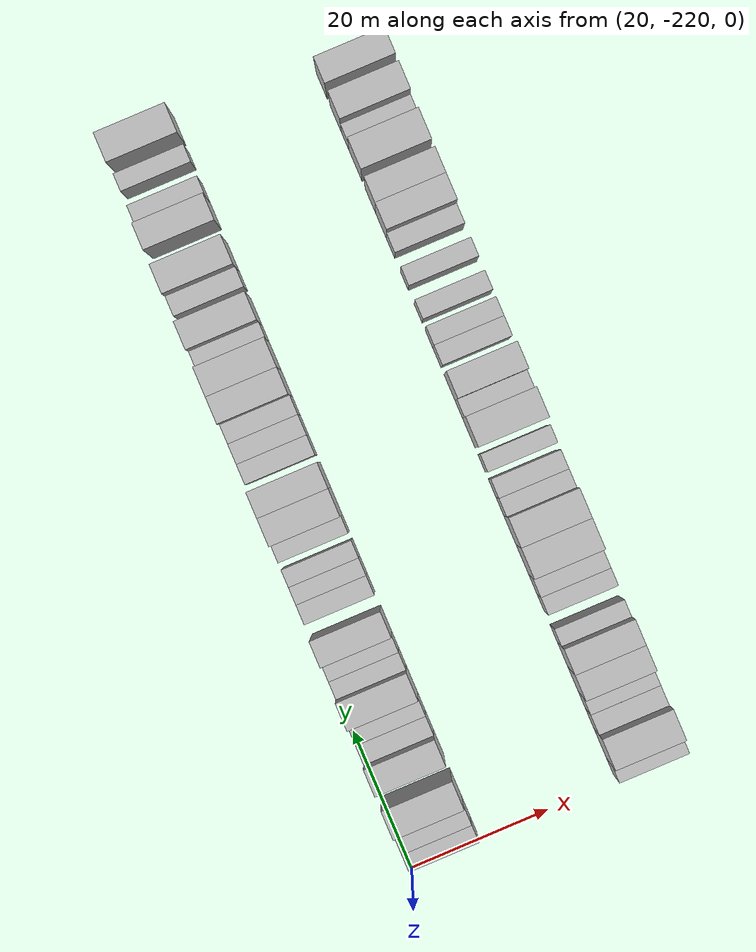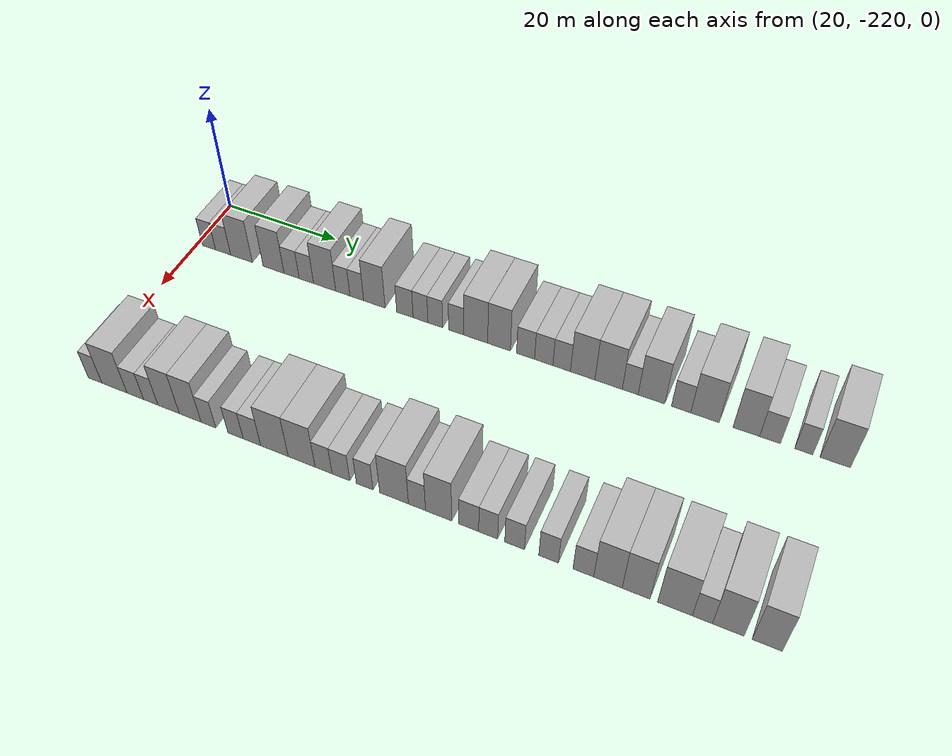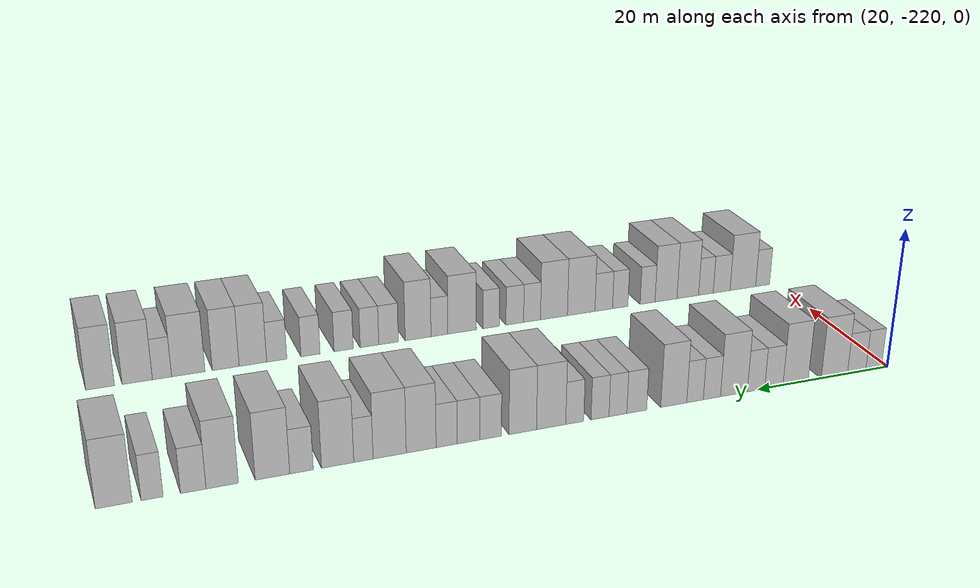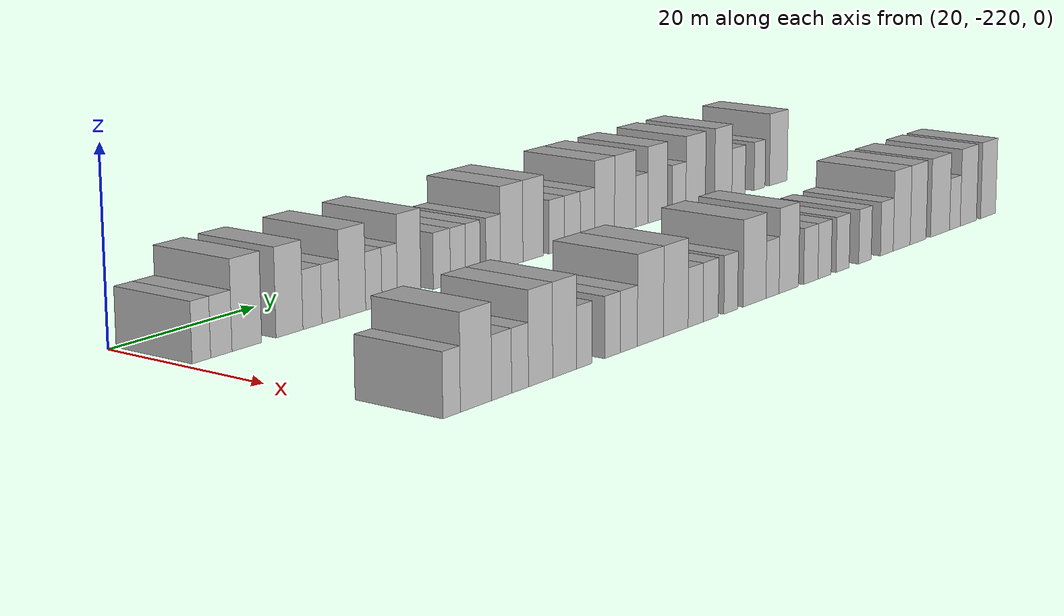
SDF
<sdf version="1.6">
 <world name="default">
  <model name="building_1">
   <static>1</static>
   <pose>25.0000 -217.7668 0 0.000000 0.000000 0.000000</pose>
   <link name="link">
    <pose>0 0 3.00 0 0 0</pose>
    <collision name="collision"><geometry><box><size>10.0000 2.4664 6.0000</size></box></geometry></collision>
    <visual name="visual">
     <cast_shadows>0</cast_shadows>
     <geometry><box><size>10.0000 2.4664 6.0000</size></box></geometry>
     <material>
      <script>
       <uri>model://HANNAS_wall/materials/scripts</uri>
       <uri>model://HANNAS_wall/materials/textures</uri>
       <name>vrc/HANNAS_wall</name>
      </script>
     </material>
    </visual>
   </link>
  </model>
  <model name="building_2">
   <static>1</static>
   <pose>25.0000 -215.0972 0 0.000000 0.000000 0.000000</pose>
   <link name="link">
    <pose>0 0 3.00 0 0 0</pose>
    <collision name="collision"><geometry><box><size>10.0000 2.8728 6.0000</size></box></geometry></collision>
    <visual name="visual">
     <cast_shadows>0</cast_shadows>
     <geometry><box><size>10.0000 2.8728 6.0000</size></box></geometry>
     <material>
      <script>
       <uri>model://HANNAS_wall/materials/scripts</uri>
       <uri>model://HANNAS_wall/materials/textures</uri>
       <name>vrc/HANNAS_wall</name>
      </script>
     </material>
    </visual>
   </link>
  </model>
  <model name="building_3">
   <static>1</static>
   <pose>25.0000 -211.6260 0 0.000000 0.000000 0.000000</pose>
   <link name="link">
    <pose>0 0 4.50 0 0 0</pose>
    <collision name="collision"><geometry><box><size>10.0000 4.0696 9.0000</size></box></geometry></collision>
    <visual name="visual">
     <cast_shadows>0</cast_shadows>
     <geometry><box><size>10.0000 4.0696 9.0000</size></box></geometry>
     <material>
      <script>
       <uri>model://HANNAS_wall/materials/scripts</uri>
       <uri>model://HANNAS_wall/materials/textures</uri>
       <name>vrc/HANNAS_wall</name>
      </script>
     </material>
    </visual>
   </link>
  </model>
  <model name="building_4">
   <static>1</static>
   <pose>25.0000 -205.6679 0 0.000000 0.000000 0.000000</pose>
   <link name="link">
    <pose>0 0 4.50 0 0 0</pose>
    <collision name="collision"><geometry><box><size>10.0000 3.8466 9.0000</size></box></geometry></collision>
    <visual name="visual">
     <cast_shadows>0</cast_shadows>
     <geometry><box><size>10.0000 3.8466 9.0000</size></box></geometry>
     <material>
      <script>
       <uri>model://HANNAS_wall/materials/scripts</uri>
       <uri>model://HANNAS_wall/materials/textures</uri>
       <name>vrc/HANNAS_wall</name>
      </script>
     </material>
    </visual>
   </link>
  </model>
  <model name="building_5">
   <static>1</static>
   <pose>25.0000 -202.3643 0 0.000000 0.000000 0.000000</pose>
   <link name="link">
    <pose>0 0 3.00 0 0 0</pose>
    <collision name="collision"><geometry><box><size>10.0000 2.7608 6.0000</size></box></geometry></collision>
    <visual name="visual">
     <cast_shadows>0</cast_shadows>
     <geometry><box><size>10.0000 2.7608 6.0000</size></box></geometry>
     <material>
      <script>
       <uri>model://HANNAS_wall/materials/scripts</uri>
       <uri>model://HANNAS_wall/materials/textures</uri>
       <name>vrc/HANNAS_wall</name>
      </script>
     </material>
    </visual>
   </link>
  </model>
  <model name="building_6">
   <static>1</static>
   <pose>25.0000 -199.6821 0 0.000000 0.000000 0.000000</pose>
   <link name="link">
    <pose>0 0 3.00 0 0 0</pose>
    <collision name="collision"><geometry><box><size>10.0000 2.6036 6.0000</size></box></geometry></collision>
    <visual name="visual">
     <cast_shadows>0</cast_shadows>
     <geometry><box><size>10.0000 2.6036 6.0000</size></box></geometry>
     <material>
      <script>
       <uri>model://HANNAS_wall/materials/scripts</uri>
       <uri>model://HANNAS_wall/materials/textures</uri>
       <name>vrc/HANNAS_wall</name>
      </script>
     </material>
    </visual>
   </link>
  </model>
  <model name="building_7">
   <static>1</static>
   <pose>25.0000 -196.3961 0 0.000000 0.000000 0.000000</pose>
   <link name="link">
    <pose>0 0 4.50 0 0 0</pose>
    <collision name="collision"><geometry><box><size>10.0000 3.9684 9.0000</size></box></geometry></collision>
    <visual name="visual">
     <cast_shadows>0</cast_shadows>
     <geometry><box><size>10.0000 3.9684 9.0000</size></box></geometry>
     <material>
      <script>
       <uri>model://HANNAS_wall/materials/scripts</uri>
       <uri>model://HANNAS_wall/materials/textures</uri>
       <name>vrc/HANNAS_wall</name>
      </script>
     </material>
    </visual>
   </link>
  </model>
  <model name="building_8">
   <static>1</static>
   <pose>25.0000 -193.1541 0 0.000000 0.000000 0.000000</pose>
   <link name="link">
    <pose>0 0 3.00 0 0 0</pose>
    <collision name="collision"><geometry><box><size>10.0000 2.5155 6.0000</size></box></geometry></collision>
    <visual name="visual">
     <cast_shadows>0</cast_shadows>
     <geometry><box><size>10.0000 2.5155 6.0000</size></box></geometry>
     <material>
      <script>
       <uri>model://HANNAS_wall/materials/scripts</uri>
       <uri>model://HANNAS_wall/materials/textures</uri>
       <name>vrc/HANNAS_wall</name>
      </script>
     </material>
    </visual>
   </link>
  </model>
  <model name="building_9">
   <static>1</static>
   <pose>25.0000 -190.6911 0 0.000000 0.000000 0.000000</pose>
   <link name="link">
    <pose>0 0 3.00 0 0 0</pose>
    <collision name="collision"><geometry><box><size>10.0000 2.4105 6.0000</size></box></geometry></collision>
    <visual name="visual">
     <cast_shadows>0</cast_shadows>
     <geometry><box><size>10.0000 2.4105 6.0000</size></box></geometry>
     <material>
      <script>
       <uri>model://HANNAS_wall/materials/scripts</uri>
       <uri>model://HANNAS_wall/materials/textures</uri>
       <name>vrc/HANNAS_wall</name>
      </script>
     </material>
    </visual>
   </link>
  </model>
  <model name="building_10">
   <static>1</static>
   <pose>25.0000 -187.6172 0 0.000000 0.000000 0.000000</pose>
   <link name="link">
    <pose>0 0 4.50 0 0 0</pose>
    <collision name="collision"><geometry><box><size>10.0000 3.7372 9.0000</size></box></geometry></collision>
    <visual name="visual">
     <cast_shadows>0</cast_shadows>
     <geometry><box><size>10.0000 3.7372 9.0000</size></box></geometry>
     <material>
      <script>
       <uri>model://HANNAS_wall/materials/scripts</uri>
       <uri>model://HANNAS_wall/materials/textures</uri>
       <name>vrc/HANNAS_wall</name>
      </script>
     </material>
    </visual>
   </link>
  </model>
  <model name="building_11">
   <static>1</static>
   <pose>25.0000 -182.3425 0 0.000000 0.000000 0.000000</pose>
   <link name="link">
    <pose>0 0 3.00 0 0 0</pose>
    <collision name="collision"><geometry><box><size>10.0000 2.8122 6.0000</size></box></geometry></collision>
    <visual name="visual">
     <cast_shadows>0</cast_shadows>
     <geometry><box><size>10.0000 2.8122 6.0000</size></box></geometry>
     <material>
      <script>
       <uri>model://HANNAS_wall/materials/scripts</uri>
       <uri>model://HANNAS_wall/materials/textures</uri>
       <name>vrc/HANNAS_wall</name>
      </script>
     </material>
    </visual>
   </link>
  </model>
  <model name="building_12">
   <static>1</static>
   <pose>25.0000 -179.6829 0 0.000000 0.000000 0.000000</pose>
   <link name="link">
    <pose>0 0 3.00 0 0 0</pose>
    <collision name="collision"><geometry><box><size>10.0000 2.5071 6.0000</size></box></geometry></collision>
    <visual name="visual">
     <cast_shadows>0</cast_shadows>
     <geometry><box><size>10.0000 2.5071 6.0000</size></box></geometry>
     <material>
      <script>
       <uri>model://HANNAS_wall/materials/scripts</uri>
       <uri>model://HANNAS_wall/materials/textures</uri>
       <name>vrc/HANNAS_wall</name>
      </script>
     </material>
    </visual>
   </link>
  </model>
  <model name="building_13">
   <static>1</static>
   <pose>25.0000 -177.1810 0 0.000000 0.000000 0.000000</pose>
   <link name="link">
    <pose>0 0 3.00 0 0 0</pose>
    <collision name="collision"><geometry><box><size>10.0000 2.4967 6.0000</size></box></geometry></collision>
    <visual name="visual">
     <cast_shadows>0</cast_shadows>
     <geometry><box><size>10.0000 2.4967 6.0000</size></box></geometry>
     <material>
      <script>
       <uri>model://HANNAS_wall/materials/scripts</uri>
       <uri>model://HANNAS_wall/materials/textures</uri>
       <name>vrc/HANNAS_wall</name>
      </script>
     </material>
    </visual>
   </link>
  </model>
  <model name="building_14">
   <static>1</static>
   <pose>25.0000 -173.6939 0 0.000000 0.000000 0.000000</pose>
   <link name="link">
    <pose>0 0 3.00 0 0 0</pose>
    <collision name="collision"><geometry><box><size>10.0000 2.4777 6.0000</size></box></geometry></collision>
    <visual name="visual">
     <cast_shadows>0</cast_shadows>
     <geometry><box><size>10.0000 2.4777 6.0000</size></box></geometry>
     <material>
      <script>
       <uri>model://HANNAS_wall/materials/scripts</uri>
       <uri>model://HANNAS_wall/materials/textures</uri>
       <name>vrc/HANNAS_wall</name>
      </script>
     </material>
    </visual>
   </link>
  </model>
  <model name="building_15">
   <static>1</static>
   <pose>25.0000 -170.4675 0 0.000000 0.000000 0.000000</pose>
   <link name="link">
    <pose>0 0 4.50 0 0 0</pose>
    <collision name="collision"><geometry><box><size>10.0000 3.9750 9.0000</size></box></geometry></collision>
    <visual name="visual">
     <cast_shadows>0</cast_shadows>
     <geometry><box><size>10.0000 3.9750 9.0000</size></box></geometry>
     <material>
      <script>
       <uri>model://HANNAS_wall/materials/scripts</uri>
       <uri>model://HANNAS_wall/materials/textures</uri>
       <name>vrc/HANNAS_wall</name>
      </script>
     </material>
    </visual>
   </link>
  </model>
  <model name="building_16">
   <static>1</static>
   <pose>25.0000 -166.6328 0 0.000000 0.000000 0.000000</pose>
   <link name="link">
    <pose>0 0 4.50 0 0 0</pose>
    <collision name="collision"><geometry><box><size>10.0000 3.6943 9.0000</size></box></geometry></collision>
    <visual name="visual">
     <cast_shadows>0</cast_shadows>
     <geometry><box><size>10.0000 3.6943 9.0000</size></box></geometry>
     <material>
      <script>
       <uri>model://HANNAS_wall/materials/scripts</uri>
       <uri>model://HANNAS_wall/materials/textures</uri>
       <name>vrc/HANNAS_wall</name>
      </script>
     </material>
    </visual>
   </link>
  </model>
  <model name="building_17">
   <static>1</static>
   <pose>25.0000 -162.3408 0 0.000000 0.000000 0.000000</pose>
   <link name="link">
    <pose>0 0 3.00 0 0 0</pose>
    <collision name="collision"><geometry><box><size>10.0000 2.8897 6.0000</size></box></geometry></collision>
    <visual name="visual">
     <cast_shadows>0</cast_shadows>
     <geometry><box><size>10.0000 2.8897 6.0000</size></box></geometry>
     <material>
      <script>
       <uri>model://HANNAS_wall/materials/scripts</uri>
       <uri>model://HANNAS_wall/materials/textures</uri>
       <name>vrc/HANNAS_wall</name>
      </script>
     </material>
    </visual>
   </link>
  </model>
  <model name="building_18">
   <static>1</static>
   <pose>25.0000 -159.4392 0 0.000000 0.000000 0.000000</pose>
   <link name="link">
    <pose>0 0 3.00 0 0 0</pose>
    <collision name="collision"><geometry><box><size>10.0000 2.9136 6.0000</size></box></geometry></collision>
    <visual name="visual">
     <cast_shadows>0</cast_shadows>
     <geometry><box><size>10.0000 2.9136 6.0000</size></box></geometry>
     <material>
      <script>
       <uri>model://HANNAS_wall/materials/scripts</uri>
       <uri>model://HANNAS_wall/materials/textures</uri>
       <name>vrc/HANNAS_wall</name>
      </script>
     </material>
    </visual>
   </link>
  </model>
  <model name="building_19">
   <static>1</static>
   <pose>25.0000 -156.6017 0 0.000000 0.000000 0.000000</pose>
   <link name="link">
    <pose>0 0 3.00 0 0 0</pose>
    <collision name="collision"><geometry><box><size>10.0000 2.7614 6.0000</size></box></geometry></collision>
    <visual name="visual">
     <cast_shadows>0</cast_shadows>
     <geometry><box><size>10.0000 2.7614 6.0000</size></box></geometry>
     <material>
      <script>
       <uri>model://HANNAS_wall/materials/scripts</uri>
       <uri>model://HANNAS_wall/materials/textures</uri>
       <name>vrc/HANNAS_wall</name>
      </script>
     </material>
    </visual>
   </link>
  </model>
  <model name="building_20">
   <static>1</static>
   <pose>25.0000 -153.3091 0 0.000000 0.000000 0.000000</pose>
   <link name="link">
    <pose>0 0 4.50 0 0 0</pose>
    <collision name="collision"><geometry><box><size>10.0000 3.8238 9.0000</size></box></geometry></collision>
    <visual name="visual">
     <cast_shadows>0</cast_shadows>
     <geometry><box><size>10.0000 3.8238 9.0000</size></box></geometry>
     <material>
      <script>
       <uri>model://HANNAS_wall/materials/scripts</uri>
       <uri>model://HANNAS_wall/materials/textures</uri>
       <name>vrc/HANNAS_wall</name>
      </script>
     </material>
    </visual>
   </link>
  </model>
  <model name="building_21">
   <static>1</static>
   <pose>25.0000 -149.2970 0 0.000000 0.000000 0.000000</pose>
   <link name="link">
    <pose>0 0 4.50 0 0 0</pose>
    <collision name="collision"><geometry><box><size>10.0000 4.2003 9.0000</size></box></geometry></collision>
    <visual name="visual">
     <cast_shadows>0</cast_shadows>
     <geometry><box><size>10.0000 4.2003 9.0000</size></box></geometry>
     <material>
      <script>
       <uri>model://HANNAS_wall/materials/scripts</uri>
       <uri>model://HANNAS_wall/materials/textures</uri>
       <name>vrc/HANNAS_wall</name>
      </script>
     </material>
    </visual>
   </link>
  </model>
  <model name="building_22">
   <static>1</static>
   <pose>25.0000 -145.9917 0 0.000000 0.000000 0.000000</pose>
   <link name="link">
    <pose>0 0 3.00 0 0 0</pose>
    <collision name="collision"><geometry><box><size>10.0000 2.4105 6.0000</size></box></geometry></collision>
    <visual name="visual">
     <cast_shadows>0</cast_shadows>
     <geometry><box><size>10.0000 2.4105 6.0000</size></box></geometry>
     <material>
      <script>
       <uri>model://HANNAS_wall/materials/scripts</uri>
       <uri>model://HANNAS_wall/materials/textures</uri>
       <name>vrc/HANNAS_wall</name>
      </script>
     </material>
    </visual>
   </link>
  </model>
  <model name="building_23">
   <static>1</static>
   <pose>25.0000 -142.7866 0 0.000000 0.000000 0.000000</pose>
   <link name="link">
    <pose>0 0 4.50 0 0 0</pose>
    <collision name="collision"><geometry><box><size>10.0000 3.9996 9.0000</size></box></geometry></collision>
    <visual name="visual">
     <cast_shadows>0</cast_shadows>
     <geometry><box><size>10.0000 3.9996 9.0000</size></box></geometry>
     <material>
      <script>
       <uri>model://HANNAS_wall/materials/scripts</uri>
       <uri>model://HANNAS_wall/materials/textures</uri>
       <name>vrc/HANNAS_wall</name>
      </script>
     </material>
    </visual>
   </link>
  </model>
  <model name="building_24">
   <static>1</static>
   <pose>25.0000 -138.3526 0 0.000000 0.000000 0.000000</pose>
   <link name="link">
    <pose>0 0 3.00 0 0 0</pose>
    <collision name="collision"><geometry><box><size>10.0000 2.8685 6.0000</size></box></geometry></collision>
    <visual name="visual">
     <cast_shadows>0</cast_shadows>
     <geometry><box><size>10.0000 2.8685 6.0000</size></box></geometry>
     <material>
      <script>
       <uri>model://HANNAS_wall/materials/scripts</uri>
       <uri>model://HANNAS_wall/materials/textures</uri>
       <name>vrc/HANNAS_wall</name>
      </script>
     </material>
    </visual>
   </link>
  </model>
  <model name="building_25">
   <static>1</static>
   <pose>25.0000 -134.8395 0 0.000000 0.000000 0.000000</pose>
   <link name="link">
    <pose>0 0 4.50 0 0 0</pose>
    <collision name="collision"><geometry><box><size>10.0000 4.1577 9.0000</size></box></geometry></collision>
    <visual name="visual">
     <cast_shadows>0</cast_shadows>
     <geometry><box><size>10.0000 4.1577 9.0000</size></box></geometry>
     <material>
      <script>
       <uri>model://HANNAS_wall/materials/scripts</uri>
       <uri>model://HANNAS_wall/materials/textures</uri>
       <name>vrc/HANNAS_wall</name>
      </script>
     </material>
    </visual>
   </link>
  </model>
  <model name="building_26">
   <static>1</static>
   <pose>25.0000 -128.8583 0 0.000000 0.000000 0.000000</pose>
   <link name="link">
    <pose>0 0 4.50 0 0 0</pose>
    <collision name="collision"><geometry><box><size>10.0000 3.8046 9.0000</size></box></geometry></collision>
    <visual name="visual">
     <cast_shadows>0</cast_shadows>
     <geometry><box><size>10.0000 3.8046 9.0000</size></box></geometry>
     <material>
      <script>
       <uri>model://HANNAS_wall/materials/scripts</uri>
       <uri>model://HANNAS_wall/materials/textures</uri>
       <name>vrc/HANNAS_wall</name>
      </script>
     </material>
    </visual>
   </link>
  </model>
  <model name="building_27">
   <static>1</static>
   <pose>25.0000 -125.4701 0 0.000000 0.000000 0.000000</pose>
   <link name="link">
    <pose>0 0 3.00 0 0 0</pose>
    <collision name="collision"><geometry><box><size>10.0000 2.9719 6.0000</size></box></geometry></collision>
    <visual name="visual">
     <cast_shadows>0</cast_shadows>
     <geometry><box><size>10.0000 2.9719 6.0000</size></box></geometry>
     <material>
      <script>
       <uri>model://HANNAS_wall/materials/scripts</uri>
       <uri>model://HANNAS_wall/materials/textures</uri>
       <name>vrc/HANNAS_wall</name>
      </script>
     </material>
    </visual>
   </link>
  </model>
  <model name="building_28">
   <static>1</static>
   <pose>25.0000 -120.7214 0 0.000000 0.000000 0.000000</pose>
   <link name="link">
    <pose>0 0 3.00 0 0 0</pose>
    <collision name="collision"><geometry><box><size>10.0000 2.5256 6.0000</size></box></geometry></collision>
    <visual name="visual">
     <cast_shadows>0</cast_shadows>
     <geometry><box><size>10.0000 2.5256 6.0000</size></box></geometry>
     <material>
      <script>
       <uri>model://HANNAS_wall/materials/scripts</uri>
       <uri>model://HANNAS_wall/materials/textures</uri>
       <name>vrc/HANNAS_wall</name>
      </script>
     </material>
    </visual>
   </link>
  </model>
  <model name="building_29">
   <static>1</static>
   <pose>25.0000 -116.3703 0 0.000000 0.000000 0.000000</pose>
   <link name="link">
    <pose>0 0 4.50 0 0 0</pose>
    <collision name="collision"><geometry><box><size>10.0000 4.1766 9.0000</size></box></geometry></collision>
    <visual name="visual">
     <cast_shadows>0</cast_shadows>
     <geometry><box><size>10.0000 4.1766 9.0000</size></box></geometry>
     <material>
      <script>
       <uri>model://HANNAS_wall/materials/scripts</uri>
       <uri>model://HANNAS_wall/materials/textures</uri>
       <name>vrc/HANNAS_wall</name>
      </script>
     </material>
    </visual>
   </link>
  </model>
  <model name="building_113">
   <static>1</static>
   <pose>55.0000 -217.7950 0 0.000000 0.000000 0.000000</pose>
   <link name="link">
    <pose>0 0 3.00 0 0 0</pose>
    <collision name="collision"><geometry><box><size>10.0000 2.4101 6.0000</size></box></geometry></collision>
    <visual name="visual">
     <cast_shadows>0</cast_shadows>
     <geometry><box><size>10.0000 2.4101 6.0000</size></box></geometry>
     <material>
      <script>
       <uri>model://HANNAS_wall/materials/scripts</uri>
       <uri>model://HANNAS_wall/materials/textures</uri>
       <name>vrc/HANNAS_wall</name>
      </script>
     </material>
    </visual>
   </link>
  </model>
  <model name="building_114">
   <static>1</static>
   <pose>55.0000 -214.3837 0 0.000000 0.000000 0.000000</pose>
   <link name="link">
    <pose>0 0 4.50 0 0 0</pose>
    <collision name="collision"><geometry><box><size>10.0000 4.4125 9.0000</size></box></geometry></collision>
    <visual name="visual">
     <cast_shadows>0</cast_shadows>
     <geometry><box><size>10.0000 4.4125 9.0000</size></box></geometry>
     <material>
      <script>
       <uri>model://HANNAS_wall/materials/scripts</uri>
       <uri>model://HANNAS_wall/materials/textures</uri>
       <name>vrc/HANNAS_wall</name>
      </script>
     </material>
    </visual>
   </link>
  </model>
  <model name="building_115">
   <static>1</static>
   <pose>55.0000 -210.7421 0 0.000000 0.000000 0.000000</pose>
   <link name="link">
    <pose>0 0 3.00 0 0 0</pose>
    <collision name="collision"><geometry><box><size>10.0000 2.8708 6.0000</size></box></geometry></collision>
    <visual name="visual">
     <cast_shadows>0</cast_shadows>
     <geometry><box><size>10.0000 2.8708 6.0000</size></box></geometry>
     <material>
      <script>
       <uri>model://HANNAS_wall/materials/scripts</uri>
       <uri>model://HANNAS_wall/materials/textures</uri>
       <name>vrc/HANNAS_wall</name>
      </script>
     </material>
    </visual>
   </link>
  </model>
  <model name="building_116">
   <static>1</static>
   <pose>55.0000 -208.0701 0 0.000000 0.000000 0.000000</pose>
   <link name="link">
    <pose>0 0 3.00 0 0 0</pose>
    <collision name="collision"><geometry><box><size>10.0000 2.4730 6.0000</size></box></geometry></collision>
    <visual name="visual">
     <cast_shadows>0</cast_shadows>
     <geometry><box><size>10.0000 2.4730 6.0000</size></box></geometry>
     <material>
      <script>
       <uri>model://HANNAS_wall/materials/scripts</uri>
       <uri>model://HANNAS_wall/materials/textures</uri>
       <name>vrc/HANNAS_wall</name>
      </script>
     </material>
    </visual>
   </link>
  </model>
  <model name="building_117">
   <static>1</static>
   <pose>55.0000 -205.0143 0 0.000000 0.000000 0.000000</pose>
   <link name="link">
    <pose>0 0 4.50 0 0 0</pose>
    <collision name="collision"><geometry><box><size>10.0000 3.6387 9.0000</size></box></geometry></collision>
    <visual name="visual">
     <cast_shadows>0</cast_shadows>
     <geometry><box><size>10.0000 3.6387 9.0000</size></box></geometry>
     <material>
      <script>
       <uri>model://HANNAS_wall/materials/scripts</uri>
       <uri>model://HANNAS_wall/materials/textures</uri>
       <name>vrc/HANNAS_wall</name>
      </script>
     </material>
    </visual>
   </link>
  </model>
  <model name="building_118">
   <static>1</static>
   <pose>55.0000 -201.3672 0 0.000000 0.000000 0.000000</pose>
   <link name="link">
    <pose>0 0 4.50 0 0 0</pose>
    <collision name="collision"><geometry><box><size>10.0000 3.6555 9.0000</size></box></geometry></collision>
    <visual name="visual">
     <cast_shadows>0</cast_shadows>
     <geometry><box><size>10.0000 3.6555 9.0000</size></box></geometry>
     <material>
      <script>
       <uri>model://HANNAS_wall/materials/scripts</uri>
       <uri>model://HANNAS_wall/materials/textures</uri>
       <name>vrc/HANNAS_wall</name>
      </script>
     </material>
    </visual>
   </link>
  </model>
  <model name="building_119">
   <static>1</static>
   <pose>55.0000 -198.3109 0 0.000000 0.000000 0.000000</pose>
   <link name="link">
    <pose>0 0 3.00 0 0 0</pose>
    <collision name="collision"><geometry><box><size>10.0000 2.4571 6.0000</size></box></geometry></collision>
    <visual name="visual">
     <cast_shadows>0</cast_shadows>
     <geometry><box><size>10.0000 2.4571 6.0000</size></box></geometry>
     <material>
      <script>
       <uri>model://HANNAS_wall/materials/scripts</uri>
       <uri>model://HANNAS_wall/materials/textures</uri>
       <name>vrc/HANNAS_wall</name>
      </script>
     </material>
    </visual>
   </link>
  </model>
  <model name="building_120">
   <static>1</static>
   <pose>55.0000 -193.8319 0 0.000000 0.000000 0.000000</pose>
   <link name="link">
    <pose>0 0 3.00 0 0 0</pose>
    <collision name="collision"><geometry><box><size>10.0000 2.5009 6.0000</size></box></geometry></collision>
    <visual name="visual">
     <cast_shadows>0</cast_shadows>
     <geometry><box><size>10.0000 2.5009 6.0000</size></box></geometry>
     <material>
      <script>
       <uri>model://HANNAS_wall/materials/scripts</uri>
       <uri>model://HANNAS_wall/materials/textures</uri>
       <name>vrc/HANNAS_wall</name>
      </script>
     </material>
    </visual>
   </link>
  </model>
  <model name="building_121">
   <static>1</static>
   <pose>55.0000 -191.1599 0 0.000000 0.000000 0.000000</pose>
   <link name="link">
    <pose>0 0 3.00 0 0 0</pose>
    <collision name="collision"><geometry><box><size>10.0000 2.8430 6.0000</size></box></geometry></collision>
    <visual name="visual">
     <cast_shadows>0</cast_shadows>
     <geometry><box><size>10.0000 2.8430 6.0000</size></box></geometry>
     <material>
      <script>
       <uri>model://HANNAS_wall/materials/scripts</uri>
       <uri>model://HANNAS_wall/materials/textures</uri>
       <name>vrc/HANNAS_wall</name>
      </script>
     </material>
    </visual>
   </link>
  </model>
  <model name="building_122">
   <static>1</static>
   <pose>55.0000 -187.5359 0 0.000000 0.000000 0.000000</pose>
   <link name="link">
    <pose>0 0 4.50 0 0 0</pose>
    <collision name="collision"><geometry><box><size>10.0000 4.4051 9.0000</size></box></geometry></collision>
    <visual name="visual">
     <cast_shadows>0</cast_shadows>
     <geometry><box><size>10.0000 4.4051 9.0000</size></box></geometry>
     <material>
      <script>
       <uri>model://HANNAS_wall/materials/scripts</uri>
       <uri>model://HANNAS_wall/materials/textures</uri>
       <name>vrc/HANNAS_wall</name>
      </script>
     </material>
    </visual>
   </link>
  </model>
  <model name="building_123">
   <static>1</static>
   <pose>55.0000 -183.2116 0 0.000000 0.000000 0.000000</pose>
   <link name="link">
    <pose>0 0 4.50 0 0 0</pose>
    <collision name="collision"><geometry><box><size>10.0000 4.2435 9.0000</size></box></geometry></collision>
    <visual name="visual">
     <cast_shadows>0</cast_shadows>
     <geometry><box><size>10.0000 4.2435 9.0000</size></box></geometry>
     <material>
      <script>
       <uri>model://HANNAS_wall/materials/scripts</uri>
       <uri>model://HANNAS_wall/materials/textures</uri>
       <name>vrc/HANNAS_wall</name>
      </script>
     </material>
    </visual>
   </link>
  </model>
  <model name="building_124">
   <static>1</static>
   <pose>55.0000 -179.7668 0 0.000000 0.000000 0.000000</pose>
   <link name="link">
    <pose>0 0 3.00 0 0 0</pose>
    <collision name="collision"><geometry><box><size>10.0000 2.6461 6.0000</size></box></geometry></collision>
    <visual name="visual">
     <cast_shadows>0</cast_shadows>
     <geometry><box><size>10.0000 2.6461 6.0000</size></box></geometry>
     <material>
      <script>
       <uri>model://HANNAS_wall/materials/scripts</uri>
       <uri>model://HANNAS_wall/materials/textures</uri>
       <name>vrc/HANNAS_wall</name>
      </script>
     </material>
    </visual>
   </link>
  </model>
  <model name="building_125">
   <static>1</static>
   <pose>55.0000 -177.0754 0 0.000000 0.000000 0.000000</pose>
   <link name="link">
    <pose>0 0 3.00 0 0 0</pose>
    <collision name="collision"><geometry><box><size>10.0000 2.7367 6.0000</size></box></geometry></collision>
    <visual name="visual">
     <cast_shadows>0</cast_shadows>
     <geometry><box><size>10.0000 2.7367 6.0000</size></box></geometry>
     <material>
      <script>
       <uri>model://HANNAS_wall/materials/scripts</uri>
       <uri>model://HANNAS_wall/materials/textures</uri>
       <name>vrc/HANNAS_wall</name>
      </script>
     </material>
    </visual>
   </link>
  </model>
  <model name="building_126">
   <static>1</static>
   <pose>55.0000 -173.4355 0 0.000000 0.000000 0.000000</pose>
   <link name="link">
    <pose>0 0 3.00 0 0 0</pose>
    <collision name="collision"><geometry><box><size>10.0000 2.5432 6.0000</size></box></geometry></collision>
    <visual name="visual">
     <cast_shadows>0</cast_shadows>
     <geometry><box><size>10.0000 2.5432 6.0000</size></box></geometry>
     <material>
      <script>
       <uri>model://HANNAS_wall/materials/scripts</uri>
       <uri>model://HANNAS_wall/materials/textures</uri>
       <name>vrc/HANNAS_wall</name>
      </script>
     </material>
    </visual>
   </link>
  </model>
  <model name="building_127">
   <static>1</static>
   <pose>55.0000 -169.0062 0 0.000000 0.000000 0.000000</pose>
   <link name="link">
    <pose>0 0 4.50 0 0 0</pose>
    <collision name="collision"><geometry><box><size>10.0000 4.3155 9.0000</size></box></geometry></collision>
    <visual name="visual">
     <cast_shadows>0</cast_shadows>
     <geometry><box><size>10.0000 4.3155 9.0000</size></box></geometry>
     <material>
      <script>
       <uri>model://HANNAS_wall/materials/scripts</uri>
       <uri>model://HANNAS_wall/materials/textures</uri>
       <name>vrc/HANNAS_wall</name>
      </script>
     </material>
    </visual>
   </link>
  </model>
  <model name="building_128">
   <static>1</static>
   <pose>55.0000 -165.5836 0 0.000000 0.000000 0.000000</pose>
   <link name="link">
    <pose>0 0 3.00 0 0 0</pose>
    <collision name="collision"><geometry><box><size>10.0000 2.5298 6.0000</size></box></geometry></collision>
    <visual name="visual">
     <cast_shadows>0</cast_shadows>
     <geometry><box><size>10.0000 2.5298 6.0000</size></box></geometry>
     <material>
      <script>
       <uri>model://HANNAS_wall/materials/scripts</uri>
       <uri>model://HANNAS_wall/materials/textures</uri>
       <name>vrc/HANNAS_wall</name>
      </script>
     </material>
    </visual>
   </link>
  </model>
  <model name="building_129">
   <static>1</static>
   <pose>55.0000 -162.3957 0 0.000000 0.000000 0.000000</pose>
   <link name="link">
    <pose>0 0 4.50 0 0 0</pose>
    <collision name="collision"><geometry><box><size>10.0000 3.8460 9.0000</size></box></geometry></collision>
    <visual name="visual">
     <cast_shadows>0</cast_shadows>
     <geometry><box><size>10.0000 3.8460 9.0000</size></box></geometry>
     <material>
      <script>
       <uri>model://HANNAS_wall/materials/scripts</uri>
       <uri>model://HANNAS_wall/materials/textures</uri>
       <name>vrc/HANNAS_wall</name>
      </script>
     </material>
    </visual>
   </link>
  </model>
  <model name="building_130">
   <static>1</static>
   <pose>55.0000 -158.0358 0 0.000000 0.000000 0.000000</pose>
   <link name="link">
    <pose>0 0 3.00 0 0 0</pose>
    <collision name="collision"><geometry><box><size>10.0000 2.8737 6.0000</size></box></geometry></collision>
    <visual name="visual">
     <cast_shadows>0</cast_shadows>
     <geometry><box><size>10.0000 2.8737 6.0000</size></box></geometry>
     <material>
      <script>
       <uri>model://HANNAS_wall/materials/scripts</uri>
       <uri>model://HANNAS_wall/materials/textures</uri>
       <name>vrc/HANNAS_wall</name>
      </script>
     </material>
    </visual>
   </link>
  </model>
  <model name="building_131">
   <static>1</static>
   <pose>55.0000 -155.2460 0 0.000000 0.000000 0.000000</pose>
   <link name="link">
    <pose>0 0 3.00 0 0 0</pose>
    <collision name="collision"><geometry><box><size>10.0000 2.7060 6.0000</size></box></geometry></collision>
    <visual name="visual">
     <cast_shadows>0</cast_shadows>
     <geometry><box><size>10.0000 2.7060 6.0000</size></box></geometry>
     <material>
      <script>
       <uri>model://HANNAS_wall/materials/scripts</uri>
       <uri>model://HANNAS_wall/materials/textures</uri>
       <name>vrc/HANNAS_wall</name>
      </script>
     </material>
    </visual>
   </link>
  </model>
  <model name="building_132">
   <static>1</static>
   <pose>55.0000 -151.5112 0 0.000000 0.000000 0.000000</pose>
   <link name="link">
    <pose>0 0 3.00 0 0 0</pose>
    <collision name="collision"><geometry><box><size>10.0000 2.7635 6.0000</size></box></geometry></collision>
    <visual name="visual">
     <cast_shadows>0</cast_shadows>
     <geometry><box><size>10.0000 2.7635 6.0000</size></box></geometry>
     <material>
      <script>
       <uri>model://HANNAS_wall/materials/scripts</uri>
       <uri>model://HANNAS_wall/materials/textures</uri>
       <name>vrc/HANNAS_wall</name>
      </script>
     </material>
    </visual>
   </link>
  </model>
  <model name="building_133">
   <static>1</static>
   <pose>55.0000 -146.7765 0 0.000000 0.000000 0.000000</pose>
   <link name="link">
    <pose>0 0 3.00 0 0 0</pose>
    <collision name="collision"><geometry><box><size>10.0000 2.7059 6.0000</size></box></geometry></collision>
    <visual name="visual">
     <cast_shadows>0</cast_shadows>
     <geometry><box><size>10.0000 2.7059 6.0000</size></box></geometry>
     <material>
      <script>
       <uri>model://HANNAS_wall/materials/scripts</uri>
       <uri>model://HANNAS_wall/materials/textures</uri>
       <name>vrc/HANNAS_wall</name>
      </script>
     </material>
    </visual>
   </link>
  </model>
  <model name="building_134">
   <static>1</static>
   <pose>55.0000 -142.0186 0 0.000000 0.000000 0.000000</pose>
   <link name="link">
    <pose>0 0 3.00 0 0 0</pose>
    <collision name="collision"><geometry><box><size>10.0000 2.8098 6.0000</size></box></geometry></collision>
    <visual name="visual">
     <cast_shadows>0</cast_shadows>
     <geometry><box><size>10.0000 2.8098 6.0000</size></box></geometry>
     <material>
      <script>
       <uri>model://HANNAS_wall/materials/scripts</uri>
       <uri>model://HANNAS_wall/materials/textures</uri>
       <name>vrc/HANNAS_wall</name>
      </script>
     </material>
    </visual>
   </link>
  </model>
  <model name="building_135">
   <static>1</static>
   <pose>55.0000 -138.7105 0 0.000000 0.000000 0.000000</pose>
   <link name="link">
    <pose>0 0 4.50 0 0 0</pose>
    <collision name="collision"><geometry><box><size>10.0000 3.8065 9.0000</size></box></geometry></collision>
    <visual name="visual">
     <cast_shadows>0</cast_shadows>
     <geometry><box><size>10.0000 3.8065 9.0000</size></box></geometry>
     <material>
      <script>
       <uri>model://HANNAS_wall/materials/scripts</uri>
       <uri>model://HANNAS_wall/materials/textures</uri>
       <name>vrc/HANNAS_wall</name>
      </script>
     </material>
    </visual>
   </link>
  </model>
  <model name="building_136">
   <static>1</static>
   <pose>55.0000 -134.9739 0 0.000000 0.000000 0.000000</pose>
   <link name="link">
    <pose>0 0 4.50 0 0 0</pose>
    <collision name="collision"><geometry><box><size>10.0000 3.6666 9.0000</size></box></geometry></collision>
    <visual name="visual">
     <cast_shadows>0</cast_shadows>
     <geometry><box><size>10.0000 3.6666 9.0000</size></box></geometry>
     <material>
      <script>
       <uri>model://HANNAS_wall/materials/scripts</uri>
       <uri>model://HANNAS_wall/materials/textures</uri>
       <name>vrc/HANNAS_wall</name>
      </script>
     </material>
    </visual>
   </link>
  </model>
  <model name="building_137">
   <static>1</static>
   <pose>55.0000 -129.8917 0 0.000000 0.000000 0.000000</pose>
   <link name="link">
    <pose>0 0 4.50 0 0 0</pose>
    <collision name="collision"><geometry><box><size>10.0000 4.4978 9.0000</size></box></geometry></collision>
    <visual name="visual">
     <cast_shadows>0</cast_shadows>
     <geometry><box><size>10.0000 4.4978 9.0000</size></box></geometry>
     <material>
      <script>
       <uri>model://HANNAS_wall/materials/scripts</uri>
       <uri>model://HANNAS_wall/materials/textures</uri>
       <name>vrc/HANNAS_wall</name>
      </script>
     </material>
    </visual>
   </link>
  </model>
  <model name="building_138">
   <static>1</static>
   <pose>55.0000 -126.3639 0 0.000000 0.000000 0.000000</pose>
   <link name="link">
    <pose>0 0 3.00 0 0 0</pose>
    <collision name="collision"><geometry><box><size>10.0000 2.5578 6.0000</size></box></geometry></collision>
    <visual name="visual">
     <cast_shadows>0</cast_shadows>
     <geometry><box><size>10.0000 2.5578 6.0000</size></box></geometry>
     <material>
      <script>
       <uri>model://HANNAS_wall/materials/scripts</uri>
       <uri>model://HANNAS_wall/materials/textures</uri>
       <name>vrc/HANNAS_wall</name>
      </script>
     </material>
    </visual>
   </link>
  </model>
  <model name="building_139">
   <static>1</static>
   <pose>55.0000 -123.0900 0 0.000000 0.000000 0.000000</pose>
   <link name="link">
    <pose>0 0 4.50 0 0 0</pose>
    <collision name="collision"><geometry><box><size>10.0000 3.9898 9.0000</size></box></geometry></collision>
    <visual name="visual">
     <cast_shadows>0</cast_shadows>
     <geometry><box><size>10.0000 3.9898 9.0000</size></box></geometry>
     <material>
      <script>
       <uri>model://HANNAS_wall/materials/scripts</uri>
       <uri>model://HANNAS_wall/materials/textures</uri>
       <name>vrc/HANNAS_wall</name>
      </script>
     </material>
    </visual>
   </link>
  </model>
  <model name="building_140">
   <static>1</static>
   <pose>55.0000 -118.2226 0 0.000000 0.000000 0.000000</pose>
   <link name="link">
    <pose>0 0 4.50 0 0 0</pose>
    <collision name="collision"><geometry><box><size>10.0000 3.7450 9.0000</size></box></geometry></collision>
    <visual name="visual">
     <cast_shadows>0</cast_shadows>
     <geometry><box><size>10.0000 3.7450 9.0000</size></box></geometry>
     <material>
      <script>
       <uri>model://HANNAS_wall/materials/scripts</uri>
       <uri>model://HANNAS_wall/materials/textures</uri>
       <name>vrc/HANNAS_wall</name>
      </script>
     </material>
    </visual>
   </link>
  </model>
 </world>
</sdf>
